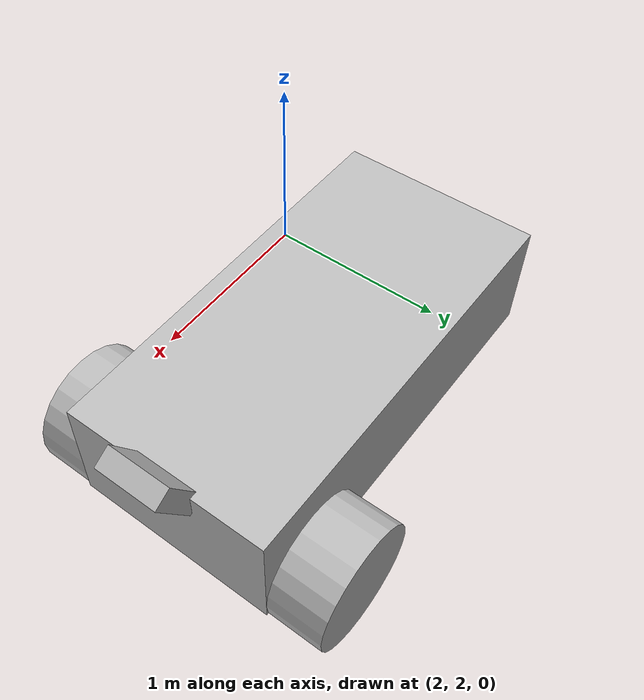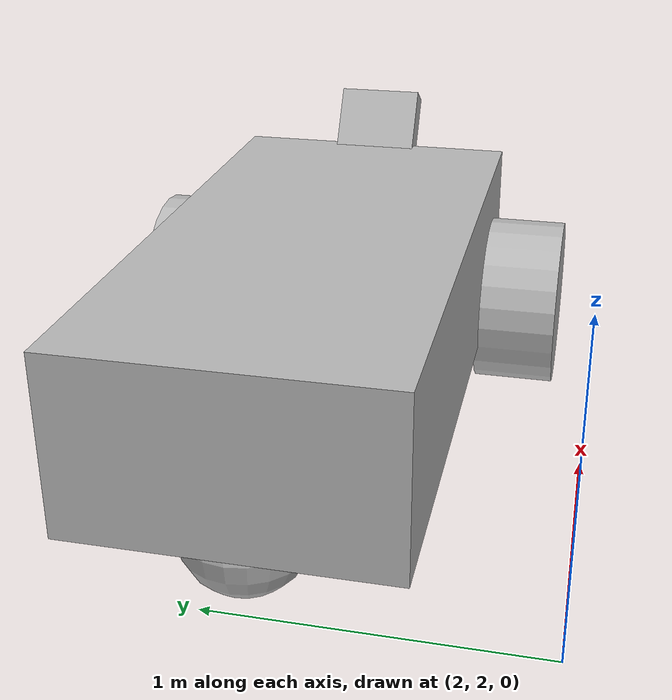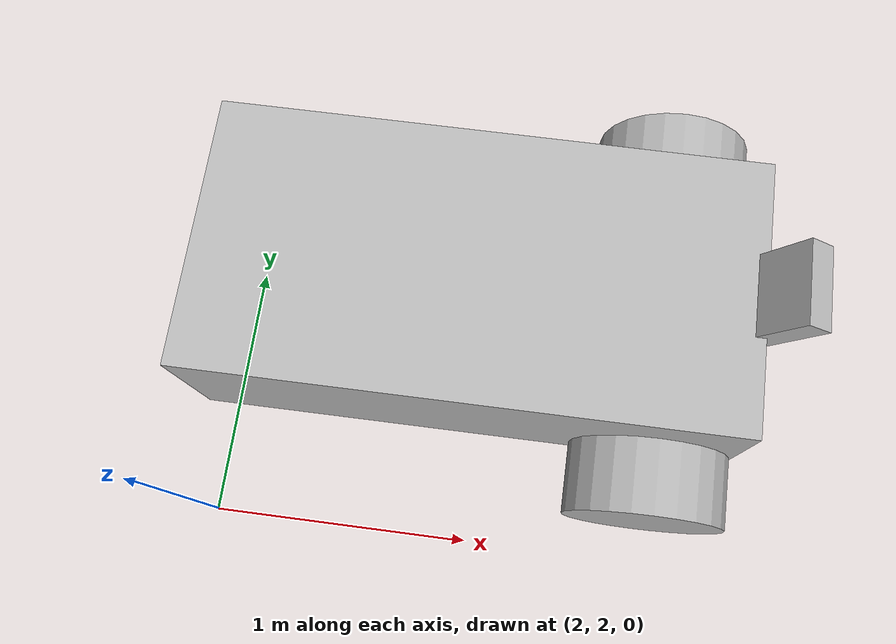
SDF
<sdf version="1.6">
 <world name="default">
  <include><uri>model://sun</uri></include>
  <model name="2wbot">
   <pose>3.1 2.9 0.325 0 -0 0</pose>
   <link name="chassis">
    <pose>-0.151427 -0 0.175 0 -0 0</pose>
    <inertial>
     <mass>1.14395</mass>
     <inertia>
      <ixx>0.126164</ixx>
      <ixy>0</ixy>
      <ixz>0</ixz>
      <iyy>0.416519</iyy>
      <iyz>0</iyz>
      <izz>0.481014</izz>
     </inertia>
    </inertial>
    <visual name="visual"><geometry><box><size>2.01142 1 0.568726</size></box></geometry></visual>
    <collision name="collision"><geometry><box><size>2.01142 1 0.568726</size></box></geometry></collision>
   </link>
   <link name="left_wheel">
    <pose>0.554283 0.625029 -0.025 -1.5707 0 0</pose>
    <inertial>
     <mass>2</mass>
     <inertia><ixx>0.145833</ixx><ixy>0</ixy><ixz>0</ixz><iyy>0.145833</iyy><iyz>0</iyz><izz>0.125</izz></inertia>
    </inertial>
    <visual name="visual">
     <geometry><cylinder><radius>0.3</radius><length>0.284363</length></cylinder></geometry>
    </visual>
    <collision name="collision">
     <geometry><cylinder><radius>0.3</radius><length>0.284363</length></cylinder></geometry>
     <surface>
      <friction><ode><mu>1</mu><mu2>1</mu2><slip1>0</slip1><slip2>0</slip2></ode></friction>
      <contact>
       <ode>
        <soft_cfm>0</soft_cfm>
        <soft_erp>0.2</soft_erp>
        <kp>1e+13</kp>
        <kd>1</kd>
        <max_vel>0.01</max_vel>
        <min_depth>0.01</min_depth>
       </ode>
      </contact>
     </surface>
    </collision>
   </link>
   <link name="right_wheel">
    <pose>0.554282 -0.625029 -0.025 -1.5707 0 0</pose>
    <inertial>
     <mass>2</mass>
     <inertia><ixx>0.145833</ixx><ixy>0</ixy><ixz>0</ixz><iyy>0.145833</iyy><iyz>0</iyz><izz>0.125</izz></inertia>
    </inertial>
    <visual name="visual">
     <geometry><cylinder><radius>0.3</radius><length>0.284363</length></cylinder></geometry>
    </visual>
    <collision name="collision">
     <geometry><cylinder><radius>0.3</radius><length>0.284363</length></cylinder></geometry>
     <surface>
      <friction><ode><mu>1</mu><mu2>1</mu2><slip1>0</slip1><slip2>0</slip2></ode></friction>
      <contact>
       <ode>
        <soft_cfm>0</soft_cfm>
        <soft_erp>0.2</soft_erp>
        <kp>1e+13</kp>
        <kd>1</kd>
        <max_vel>0.01</max_vel>
        <min_depth>0.01</min_depth>
       </ode>
      </contact>
     </surface>
    </collision>
   </link>
   <link name="caster">
    <pose>-0.957138 -0 -0.125 0 -0 0</pose>
    <inertial>
     <mass>1</mass>
     <inertia><ixx>0.1</ixx><ixy>0</ixy><ixz>0</ixz><iyy>0.1</iyy><iyz>0</iyz><izz>0.1</izz></inertia>
    </inertial>
    <visual name="visual"><geometry><sphere><radius>0.2</radius></sphere></geometry></visual>
    <collision name="collision"><geometry><sphere><radius>0.2</radius></sphere></geometry></collision>
   </link>
   <joint name="left_wheel_joint" type="revolute">
    <parent>chassis</parent>
    <child>left_wheel</child>
    <axis><xyz>0 0 1</xyz><limit><lower>-1.79769e+308</lower><upper>1.79769e+308</upper></limit></axis>
   </joint>
   <joint name="right_wheel_joint" type="revolute">
    <parent>chassis</parent>
    <child>right_wheel</child>
    <axis><xyz>0 0 1</xyz><limit><lower>-1.79769e+308</lower><upper>1.79769e+308</upper></limit></axis>
   </joint>
   <joint name="caster_wheel" type="ball"><parent>chassis</parent><child>caster</child></joint>
   <joint name="camera_joint" type="fixed"><parent>chassis</parent><child>camera_link</child></joint>
   <link name="camera_link">
    <pose>0.9 0 0.50 0 0.55 0</pose>
    <inertial>
     <mass>0.001</mass>
     <inertia><ixx>0</ixx><ixy>0</ixy><ixz>0</ixz><iyy>0</iyy><iyz>0</iyz><izz>0</izz></inertia>
    </inertial>
    <visual name="visual"><geometry><box><size>0.1 0.3 0.3</size></box></geometry></visual>
    <collision name="collision"><geometry><box><size>0.1 0.3 0.3</size></box></geometry></collision>
   </link>
   <joint name="camera_optical_joint" type="fixed">
    <parent>camera_link</parent>
    <child>camera_link_optical</child>
   </joint>
   <link name="camera_link_optical">
    <pose>0.9 0 0.50 0 0.55 0</pose>
    <sensor type="camera" name="camera1">
     <update_rate>60</update_rate>
     <visualize>true</visualize>
     <camera name="head">
      <horizontal_fov>1.3962634</horizontal_fov>
      <image><width>640</width><height>480</height><format>R8G8B8</format></image>
      <clip><near>0.02</near><far>300</far></clip>
      <noise><type>gaussian</type><mean>0.0</mean><stddev>0.007</stddev></noise>
     </camera>
     <plugin name="camera_controller" filename="libgazebo_ros_camera.so">
      <ros>
       <namespace>demo_cam</namespace>
       <remapping>image_raw:=image_demo</remapping>
       <remapping>camera_info:=camera_info_demo</remapping>
      </ros>
     </plugin>
    </sensor>
   </link>
   <plugin name="bytes_joint_state" filename="libgazebo_ros_joint_state_publisher.so">
    <ros><remapping>~/out:=joint_states</remapping></ros>
    <update_rate>1</update_rate>
    <joint_name>left_wheel_joint</joint_name>
    <joint_name>right_wheel_joint</joint_name>
   </plugin>
   <plugin name="diff_drive" filename="libgazebo_ros_diff_drive.so">
    <ros>
     <namespace>/demo</namespace>
     <remapping>cmd_vel:=cmd_demo</remapping>
     <remapping>odom:=odom_demo</remapping>
    </ros>
    <left_joint>left_wheel_joint</left_joint>
    <right_joint>right_wheel_joint</right_joint>
    <wheel_separation>1.25</wheel_separation>
    <wheel_diameter>0.6</wheel_diameter>
    <max_wheel_torque>20</max_wheel_torque>
    <max_wheel_acceleration>1.0</max_wheel_acceleration>
    <publish_odom>true</publish_odom>
    <publish_odom_tf>true</publish_odom_tf>
    <publish_wheel_tf>true</publish_wheel_tf>
    <odometry_frame>odom_demo</odometry_frame>
    <robot_base_frame>chassis</robot_base_frame>
   </plugin>
  </model>
 </world>
</sdf>
